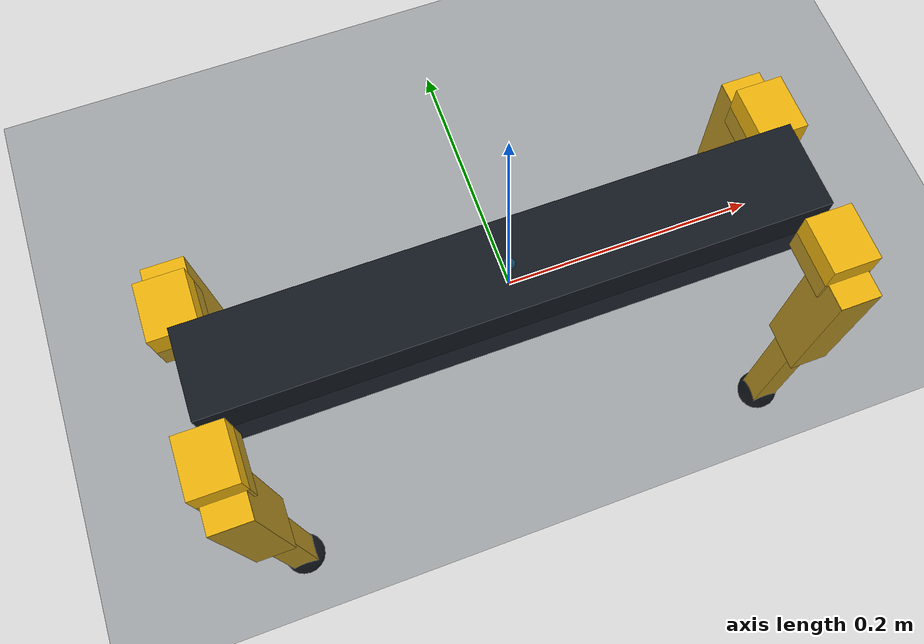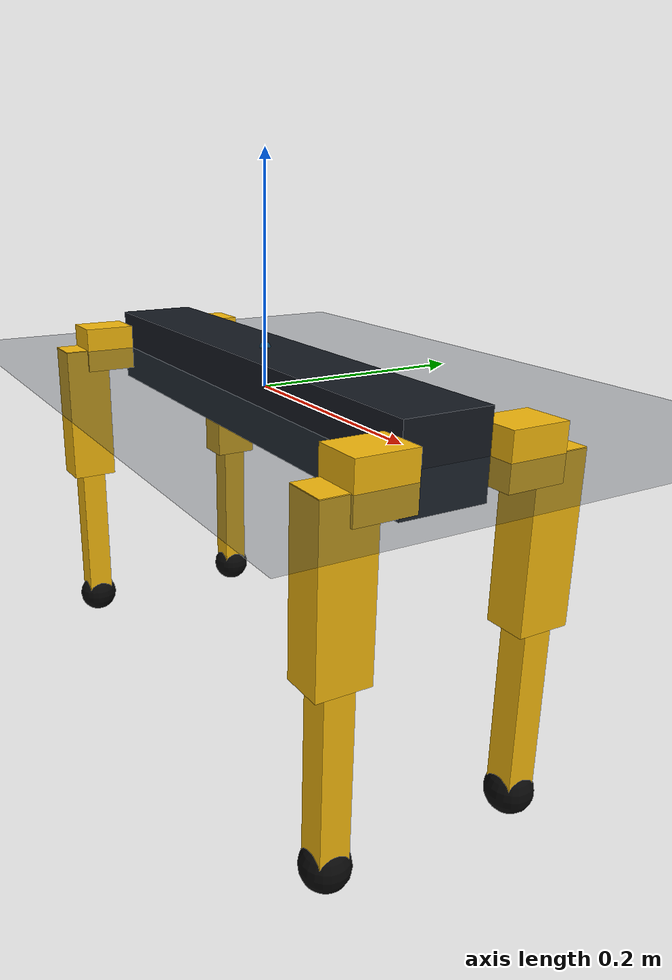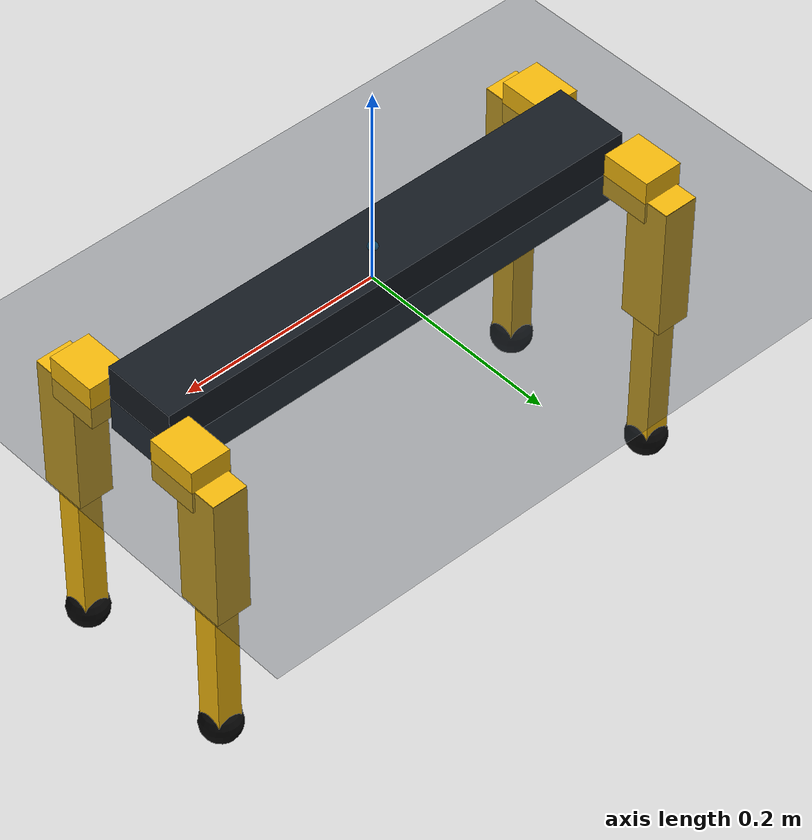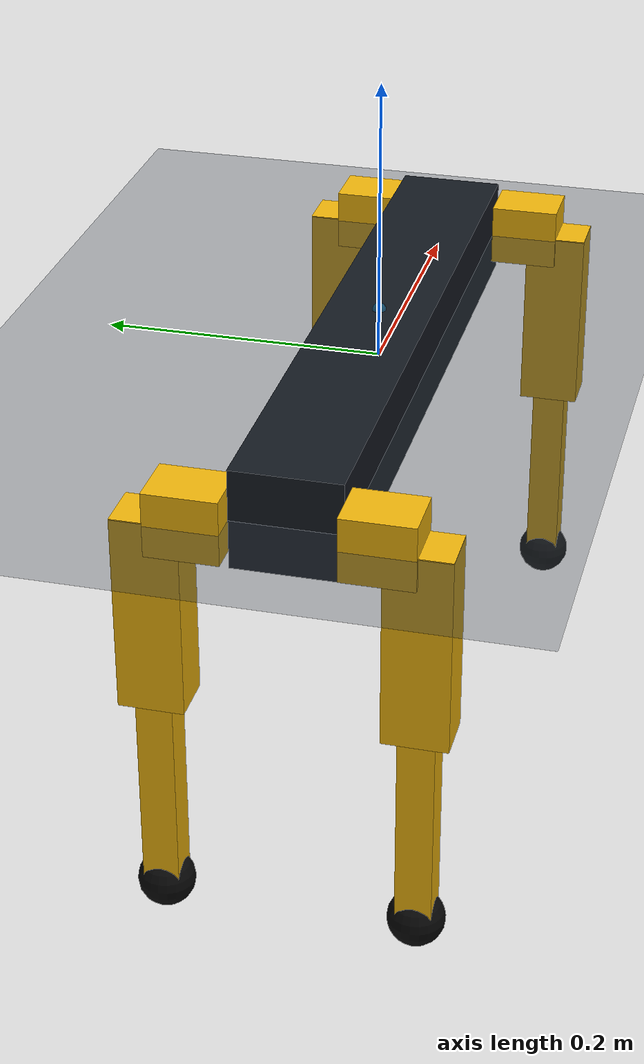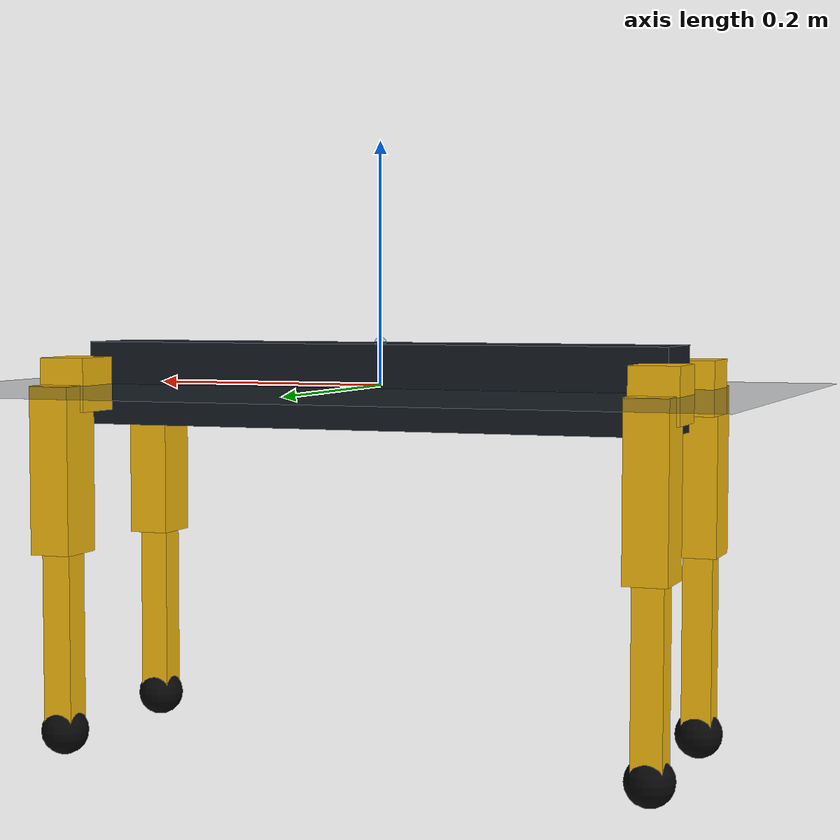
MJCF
<mujoco model="spot_omg_dynamic">
  <!--Generated from hardware/urdf/spot_omg.urdf; do not hand-edit.-->
  <compiler angle="radian"/>

  <option integrator="implicitfast" noslip_iterations="10"/>

  <worldbody>
    <geom name="ground" size="5 5 0.1" type="plane" friction="0.9" rgba="0.18 0.22 0.26 1"/>
    <light name="sun" pos="0 0 3" dir="0 0 -1" type="directional" ambient="0.2 0.2 0.2" diffuse="0.8 0.8 0.8"/>
    <body name="base_link">
      <inertial pos="0 0 0" quat="0 0.707107 0 0.707107" mass="1.8" diaginertia="0.0383438 0.038235 0.00157875"/>
      <joint name="root" type="free"/>
      <geom size="0.25 0.0375 0.035" type="box" rgba="0.08 0.1 0.13 1"/>
      <body name="imu_link" pos="0 0 0.035">
        <site name="body_imu_site" pos="0 0 0" rgba="0.1 0.7 1 0.35"/>
      </body>
      <body name="fl_hip_link" pos="0.25 0.0375 0">
        <inertial pos="0 0.025 0" quat="0.707107 0.707107 0 0" mass="0.12" diaginertia="4.525e-05 4.1e-05 3.625e-05"/>
        <joint name="fl_j1" pos="0 0 0" axis="1 0 0" range="-0.523599 0.523599" actuatorfrclimited="true" actuatorfrcrange="-2.942 2.942" armature="0.002" damping="0.05" frictionloss="0.02"/>
        <geom size="0.02 0.025 0.0225" pos="0 0.025 0" type="box" rgba="0.95 0.72 0.05 1"/>
        <body name="fl_upper_link" pos="0 0.05 0">
          <inertial pos="0 0 -0.07" mass="0.15" diaginertia="0.000270312 0.000260313 4.0625e-05"/>
          <joint name="fl_j2" pos="0 0 0" axis="0 1 0" range="-0.785398 1.74533" actuatorfrclimited="true" actuatorfrcrange="-2.942 2.942" armature="0.002" damping="0.05" frictionloss="0.02"/>
          <geom size="0.0175 0.0225 0.07" pos="0 0 -0.07" type="box" rgba="0.95 0.72 0.05 1"/>
          <body name="fl_lower_link" pos="0 0 -0.14">
            <inertial pos="0 0 -0.075" mass="0.1" diaginertia="0.000192708 0.000192708 1.04167e-05"/>
            <joint name="fl_j3" pos="0 0 0" axis="0 -1 0" range="0 2.61799" actuatorfrclimited="true" actuatorfrcrange="-2.942 2.942" armature="0.002" damping="0.05" frictionloss="0.02"/>
            <geom size="0.0125 0.0125 0.075" pos="0 0 -0.075" type="box" rgba="0.95 0.72 0.05 1"/>
            <body name="fl_foot_link" pos="0 0 -0.15">
              <inertial pos="0 0 0" mass="0.03" diaginertia="4.8e-06 4.8e-06 4.8e-06"/>
              <geom name="fl_foot_geom" size="0.02" friction="0.9" rgba="0.03 0.03 0.03 1"/>
            </body>
          </body>
        </body>
      </body>
      <body name="fr_hip_link" pos="0.25 -0.0375 0">
        <inertial pos="0 -0.025 0" quat="0.707107 0.707107 0 0" mass="0.12" diaginertia="4.525e-05 4.1e-05 3.625e-05"/>
        <joint name="fr_j1" pos="0 0 0" axis="-1 0 0" range="-0.523599 0.523599" actuatorfrclimited="true" actuatorfrcrange="-2.942 2.942" armature="0.002" damping="0.05" frictionloss="0.02"/>
        <geom size="0.02 0.025 0.0225" pos="0 -0.025 0" type="box" rgba="0.95 0.72 0.05 1"/>
        <body name="fr_upper_link" pos="0 -0.05 0">
          <inertial pos="0 0 -0.07" mass="0.15" diaginertia="0.000270312 0.000260313 4.0625e-05"/>
          <joint name="fr_j2" pos="0 0 0" axis="0 1 0" range="-0.785398 1.74533" actuatorfrclimited="true" actuatorfrcrange="-2.942 2.942" armature="0.002" damping="0.05" frictionloss="0.02"/>
          <geom size="0.0175 0.0225 0.07" pos="0 0 -0.07" type="box" rgba="0.95 0.72 0.05 1"/>
          <body name="fr_lower_link" pos="0 0 -0.14">
            <inertial pos="0 0 -0.075" mass="0.1" diaginertia="0.000192708 0.000192708 1.04167e-05"/>
            <joint name="fr_j3" pos="0 0 0" axis="0 -1 0" range="0 2.61799" actuatorfrclimited="true" actuatorfrcrange="-2.942 2.942" armature="0.002" damping="0.05" frictionloss="0.02"/>
            <geom size="0.0125 0.0125 0.075" pos="0 0 -0.075" type="box" rgba="0.95 0.72 0.05 1"/>
            <body name="fr_foot_link" pos="0 0 -0.15">
              <inertial pos="0 0 0" mass="0.03" diaginertia="4.8e-06 4.8e-06 4.8e-06"/>
              <geom name="fr_foot_geom" size="0.02" friction="0.9" rgba="0.03 0.03 0.03 1"/>
            </body>
          </body>
        </body>
      </body>
      <body name="rl_hip_link" pos="-0.25 0.0375 0">
        <inertial pos="0 0.025 0" quat="0.707107 0.707107 0 0" mass="0.12" diaginertia="4.525e-05 4.1e-05 3.625e-05"/>
        <joint name="rl_j1" pos="0 0 0" axis="1 0 0" range="-0.523599 0.523599" actuatorfrclimited="true" actuatorfrcrange="-2.942 2.942" armature="0.002" damping="0.05" frictionloss="0.02"/>
        <geom size="0.02 0.025 0.0225" pos="0 0.025 0" type="box" rgba="0.95 0.72 0.05 1"/>
        <body name="rl_upper_link" pos="0 0.05 0">
          <inertial pos="0 0 -0.07" mass="0.15" diaginertia="0.000270312 0.000260313 4.0625e-05"/>
          <joint name="rl_j2" pos="0 0 0" axis="0 1 0" range="-0.785398 1.74533" actuatorfrclimited="true" actuatorfrcrange="-2.942 2.942" armature="0.002" damping="0.05" frictionloss="0.02"/>
          <geom size="0.0175 0.0225 0.07" pos="0 0 -0.07" type="box" rgba="0.95 0.72 0.05 1"/>
          <body name="rl_lower_link" pos="0 0 -0.14">
            <inertial pos="0 0 -0.075" mass="0.1" diaginertia="0.000192708 0.000192708 1.04167e-05"/>
            <joint name="rl_j3" pos="0 0 0" axis="0 -1 0" range="0 2.61799" actuatorfrclimited="true" actuatorfrcrange="-2.942 2.942" armature="0.002" damping="0.05" frictionloss="0.02"/>
            <geom size="0.0125 0.0125 0.075" pos="0 0 -0.075" type="box" rgba="0.95 0.72 0.05 1"/>
            <body name="rl_foot_link" pos="0 0 -0.15">
              <inertial pos="0 0 0" mass="0.03" diaginertia="4.8e-06 4.8e-06 4.8e-06"/>
              <geom name="rl_foot_geom" size="0.02" friction="0.9" rgba="0.03 0.03 0.03 1"/>
            </body>
          </body>
        </body>
      </body>
      <body name="rr_hip_link" pos="-0.25 -0.0375 0">
        <inertial pos="0 -0.025 0" quat="0.707107 0.707107 0 0" mass="0.12" diaginertia="4.525e-05 4.1e-05 3.625e-05"/>
        <joint name="rr_j1" pos="0 0 0" axis="-1 0 0" range="-0.523599 0.523599" actuatorfrclimited="true" actuatorfrcrange="-2.942 2.942" armature="0.002" damping="0.05" frictionloss="0.02"/>
        <geom size="0.02 0.025 0.0225" pos="0 -0.025 0" type="box" rgba="0.95 0.72 0.05 1"/>
        <body name="rr_upper_link" pos="0 -0.05 0">
          <inertial pos="0 0 -0.07" mass="0.15" diaginertia="0.000270312 0.000260313 4.0625e-05"/>
          <joint name="rr_j2" pos="0 0 0" axis="0 1 0" range="-0.785398 1.74533" actuatorfrclimited="true" actuatorfrcrange="-2.942 2.942" armature="0.002" damping="0.05" frictionloss="0.02"/>
          <geom size="0.0175 0.0225 0.07" pos="0 0 -0.07" type="box" rgba="0.95 0.72 0.05 1"/>
          <body name="rr_lower_link" pos="0 0 -0.14">
            <inertial pos="0 0 -0.075" mass="0.1" diaginertia="0.000192708 0.000192708 1.04167e-05"/>
            <joint name="rr_j3" pos="0 0 0" axis="0 -1 0" range="0 2.61799" actuatorfrclimited="true" actuatorfrcrange="-2.942 2.942" armature="0.002" damping="0.05" frictionloss="0.02"/>
            <geom size="0.0125 0.0125 0.075" pos="0 0 -0.075" type="box" rgba="0.95 0.72 0.05 1"/>
            <body name="rr_foot_link" pos="0 0 -0.15">
              <inertial pos="0 0 0" mass="0.03" diaginertia="4.8e-06 4.8e-06 4.8e-06"/>
              <geom name="rr_foot_geom" size="0.02" friction="0.9" rgba="0.03 0.03 0.03 1"/>
            </body>
          </body>
        </body>
      </body>
    </body>
  </worldbody>

  <actuator>
    <general name="fl_j1_position" joint="fl_j1" ctrllimited="true" ctrlrange="-0.523599 0.523599" forcelimited="true" forcerange="-2.942 2.942" biastype="affine" gainprm="35" biasprm="0 -35 -0.8"/>
    <general name="fl_j2_position" joint="fl_j2" ctrllimited="true" ctrlrange="-0.785398 1.74533" forcelimited="true" forcerange="-2.942 2.942" biastype="affine" gainprm="35" biasprm="0 -35 -0.8"/>
    <general name="fl_j3_position" joint="fl_j3" ctrllimited="true" ctrlrange="0 2.61799" forcelimited="true" forcerange="-2.942 2.942" biastype="affine" gainprm="35" biasprm="0 -35 -0.8"/>
    <general name="fr_j1_position" joint="fr_j1" ctrllimited="true" ctrlrange="-0.523599 0.523599" forcelimited="true" forcerange="-2.942 2.942" biastype="affine" gainprm="35" biasprm="0 -35 -0.8"/>
    <general name="fr_j2_position" joint="fr_j2" ctrllimited="true" ctrlrange="-0.785398 1.74533" forcelimited="true" forcerange="-2.942 2.942" biastype="affine" gainprm="35" biasprm="0 -35 -0.8"/>
    <general name="fr_j3_position" joint="fr_j3" ctrllimited="true" ctrlrange="0 2.61799" forcelimited="true" forcerange="-2.942 2.942" biastype="affine" gainprm="35" biasprm="0 -35 -0.8"/>
    <general name="rl_j1_position" joint="rl_j1" ctrllimited="true" ctrlrange="-0.523599 0.523599" forcelimited="true" forcerange="-2.942 2.942" biastype="affine" gainprm="35" biasprm="0 -35 -0.8"/>
    <general name="rl_j2_position" joint="rl_j2" ctrllimited="true" ctrlrange="-0.785398 1.74533" forcelimited="true" forcerange="-2.942 2.942" biastype="affine" gainprm="35" biasprm="0 -35 -0.8"/>
    <general name="rl_j3_position" joint="rl_j3" ctrllimited="true" ctrlrange="0 2.61799" forcelimited="true" forcerange="-2.942 2.942" biastype="affine" gainprm="35" biasprm="0 -35 -0.8"/>
    <general name="rr_j1_position" joint="rr_j1" ctrllimited="true" ctrlrange="-0.523599 0.523599" forcelimited="true" forcerange="-2.942 2.942" biastype="affine" gainprm="35" biasprm="0 -35 -0.8"/>
    <general name="rr_j2_position" joint="rr_j2" ctrllimited="true" ctrlrange="-0.785398 1.74533" forcelimited="true" forcerange="-2.942 2.942" biastype="affine" gainprm="35" biasprm="0 -35 -0.8"/>
    <general name="rr_j3_position" joint="rr_j3" ctrllimited="true" ctrlrange="0 2.61799" forcelimited="true" forcerange="-2.942 2.942" biastype="affine" gainprm="35" biasprm="0 -35 -0.8"/>
  </actuator>

  <sensor>
    <framequat objtype="site" objname="body_imu_site" name="body_imu_orientation"/>
    <gyro site="body_imu_site" name="body_imu_gyro"/>
  </sensor>
</mujoco>
